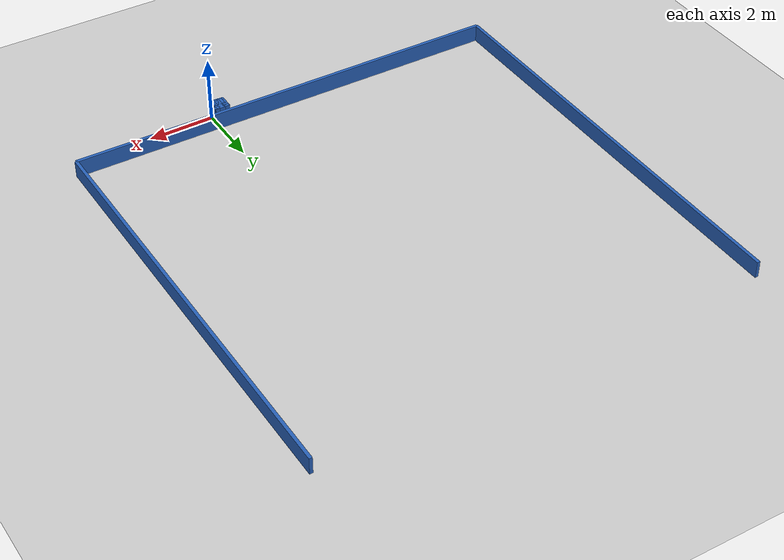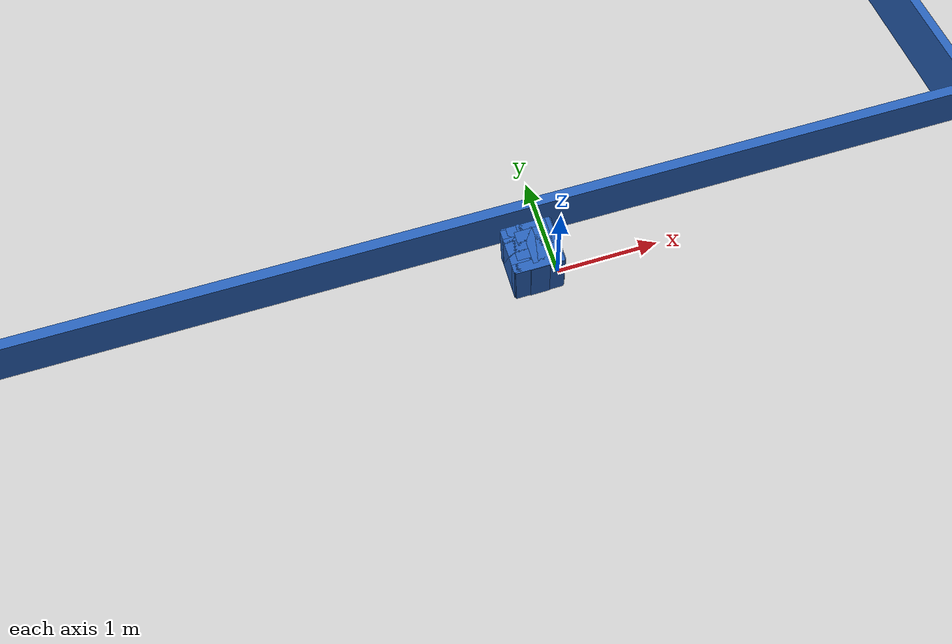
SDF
<?xml version="1.0" ?>
    <sdf version="1.5">
      <world name="default">
        <!-- A global light source -->
        <include>
          <uri>model://sun</uri>
        </include>
        <!-- A ground plane -->
        <include>
          <uri>model://ground_plane</uri>
        </include>

    <model name='libopen_space_final_T2B_123_20'>
      <static>1</static>
      <pose frame=''>-0.225000 0.075000 0.000000 0.000000 0.000000 0.000000</pose>
      <link name='link'>
        <inertial>
          <mass>1</mass>
          <inertia>
            <ixx>0.145833</ixx>
            <ixy>0</ixy>
            <ixz>0</ixz>
            <iyy>0.145833</iyy>
            <iyz>0</iyz>
            <izz>0.125</izz>
          </inertia>
        </inertial>
        <collision name='collision'>
          <geometry>
            <box>
              <size>0.18 0.48 1</size>
            </box>
          </geometry>
          <max_contacts>10</max_contacts>
          <surface>
            <contact>
              <ode/>
            </contact>
            <bounce/>
            <friction>
              <torsional>
                <ode/>
              </torsional>
              <ode/>
            </friction>
          </surface>
        </collision>
        <visual name='visual'>
          <geometry>
            <box>
              <size>0.18 0.48 1</size>
            </box>
          </geometry>
	    <material>
              <ambient>0.152000 0.379000 0.720000 1</ambient>
	      <diffuse>0.152000 0.379000 0.720000 1</diffuse>
          </material>
          <material>
            <script>
              <name>Gazebo/Grey</name>
              <uri>file://media/materials/scripts/gazebo.material</uri>
            </script>
          </material>
        </visual>
        <self_collide>0</self_collide>
        <kinematic>0</kinematic>
        <gravity>1</gravity>
      </link>
      <plugin name='libopen_space_final_T2B_123_20' filename='libopen_space_final_T2B_123_20.so'/>
    </model>

    <model name='libopen_space_final_T2B_109_60'>
      <static>1</static>
      <pose frame=''>-0.225000 0.075000 0.000000 0.000000 0.000000 0.000000</pose>
      <link name='link'>
        <inertial>
          <mass>1</mass>
          <inertia>
            <ixx>0.145833</ixx>
            <ixy>0</ixy>
            <ixz>0</ixz>
            <iyy>0.145833</iyy>
            <iyz>0</iyz>
            <izz>0.125</izz>
          </inertia>
        </inertial>
        <collision name='collision'>
          <geometry>
            <box>
              <size>0.13 0.34 1</size>
            </box>
          </geometry>
          <max_contacts>10</max_contacts>
          <surface>
            <contact>
              <ode/>
            </contact>
            <bounce/>
            <friction>
              <torsional>
                <ode/>
              </torsional>
              <ode/>
            </friction>
          </surface>
        </collision>
        <visual name='visual'>
          <geometry>
            <box>
              <size>0.13 0.34 1</size>
            </box>
          </geometry>
	    <material>
              <ambient>0.152000 0.379000 0.720000 1</ambient>
	      <diffuse>0.152000 0.379000 0.720000 1</diffuse>
          </material>
          <material>
            <script>
              <name>Gazebo/Grey</name>
              <uri>file://media/materials/scripts/gazebo.material</uri>
            </script>
          </material>
        </visual>
        <self_collide>0</self_collide>
        <kinematic>0</kinematic>
        <gravity>1</gravity>
      </link>
      <plugin name='libopen_space_final_T2B_109_60' filename='libopen_space_final_T2B_109_60.so'/>
    </model>

    <model name='libopen_space_final_T2B_52_73'>
      <static>1</static>
      <pose frame=''>-0.225000 0.075000 0.000000 0.000000 0.000000 0.000000</pose>
      <link name='link'>
        <inertial>
          <mass>1</mass>
          <inertia>
            <ixx>0.145833</ixx>
            <ixy>0</ixy>
            <ixz>0</ixz>
            <iyy>0.145833</iyy>
            <iyz>0</iyz>
            <izz>0.125</izz>
          </inertia>
        </inertial>
        <collision name='collision'>
          <geometry>
            <box>
              <size>0.11 0.37 1</size>
            </box>
          </geometry>
          <max_contacts>10</max_contacts>
          <surface>
            <contact>
              <ode/>
            </contact>
            <bounce/>
            <friction>
              <torsional>
                <ode/>
              </torsional>
              <ode/>
            </friction>
          </surface>
        </collision>
        <visual name='visual'>
          <geometry>
            <box>
              <size>0.11 0.37 1</size>
            </box>
          </geometry>
	    <material>
              <ambient>0.152000 0.379000 0.720000 1</ambient>
	      <diffuse>0.152000 0.379000 0.720000 1</diffuse>
          </material>
          <material>
            <script>
              <name>Gazebo/Grey</name>
              <uri>file://media/materials/scripts/gazebo.material</uri>
            </script>
          </material>
        </visual>
        <self_collide>0</self_collide>
        <kinematic>0</kinematic>
        <gravity>1</gravity>
      </link>
      <plugin name='libopen_space_final_T2B_52_73' filename='libopen_space_final_T2B_52_73.so'/>
    </model>

    <model name='libopen_space_final_T2B_106_71'>
      <static>1</static>
      <pose frame=''>-0.225000 0.075000 0.000000 0.000000 0.000000 0.000000</pose>
      <link name='link'>
        <inertial>
          <mass>1</mass>
          <inertia>
            <ixx>0.145833</ixx>
            <ixy>0</ixy>
            <ixz>0</ixz>
            <iyy>0.145833</iyy>
            <iyz>0</iyz>
            <izz>0.125</izz>
          </inertia>
        </inertial>
        <collision name='collision'>
          <geometry>
            <box>
              <size>0.35 0.44 1</size>
            </box>
          </geometry>
          <max_contacts>10</max_contacts>
          <surface>
            <contact>
              <ode/>
            </contact>
            <bounce/>
            <friction>
              <torsional>
                <ode/>
              </torsional>
              <ode/>
            </friction>
          </surface>
        </collision>
        <visual name='visual'>
          <geometry>
            <box>
              <size>0.35 0.44 1</size>
            </box>
          </geometry>
	    <material>
              <ambient>0.152000 0.379000 0.720000 1</ambient>
	      <diffuse>0.152000 0.379000 0.720000 1</diffuse>
          </material>
          <material>
            <script>
              <name>Gazebo/Grey</name>
              <uri>file://media/materials/scripts/gazebo.material</uri>
            </script>
          </material>
        </visual>
        <self_collide>0</self_collide>
        <kinematic>0</kinematic>
        <gravity>1</gravity>
      </link>
      <plugin name='libopen_space_final_T2B_106_71' filename='libopen_space_final_T2B_106_71.so'/>
    </model>

    <model name='libopen_space_final_T2B_55_44'>
      <static>1</static>
      <pose frame=''>-0.225000 0.075000 0.000000 0.000000 0.000000 0.000000</pose>
      <link name='link'>
        <inertial>
          <mass>1</mass>
          <inertia>
            <ixx>0.145833</ixx>
            <ixy>0</ixy>
            <ixz>0</ixz>
            <iyy>0.145833</iyy>
            <iyz>0</iyz>
            <izz>0.125</izz>
          </inertia>
        </inertial>
        <collision name='collision'>
          <geometry>
            <box>
              <size>0.48 0.28 1</size>
            </box>
          </geometry>
          <max_contacts>10</max_contacts>
          <surface>
            <contact>
              <ode/>
            </contact>
            <bounce/>
            <friction>
              <torsional>
                <ode/>
              </torsional>
              <ode/>
            </friction>
          </surface>
        </collision>
        <visual name='visual'>
          <geometry>
            <box>
              <size>0.48 0.28 1</size>
            </box>
          </geometry>
	    <material>
              <ambient>0.152000 0.379000 0.720000 1</ambient>
	      <diffuse>0.152000 0.379000 0.720000 1</diffuse>
          </material>
          <material>
            <script>
              <name>Gazebo/Grey</name>
              <uri>file://media/materials/scripts/gazebo.material</uri>
            </script>
          </material>
        </visual>
        <self_collide>0</self_collide>
        <kinematic>0</kinematic>
        <gravity>1</gravity>
      </link>
      <plugin name='libopen_space_final_T2B_55_44' filename='libopen_space_final_T2B_55_44.so'/>
    </model>

    <model name='libopen_space_final_T2B_73_9'>
      <static>1</static>
      <pose frame=''>-0.225000 0.075000 0.000000 0.000000 0.000000 0.000000</pose>
      <link name='link'>
        <inertial>
          <mass>1</mass>
          <inertia>
            <ixx>0.145833</ixx>
            <ixy>0</ixy>
            <ixz>0</ixz>
            <iyy>0.145833</iyy>
            <iyz>0</iyz>
            <izz>0.125</izz>
          </inertia>
        </inertial>
        <collision name='collision'>
          <geometry>
            <box>
              <size>0.37 0.47 1</size>
            </box>
          </geometry>
          <max_contacts>10</max_contacts>
          <surface>
            <contact>
              <ode/>
            </contact>
            <bounce/>
            <friction>
              <torsional>
                <ode/>
              </torsional>
              <ode/>
            </friction>
          </surface>
        </collision>
        <visual name='visual'>
          <geometry>
            <box>
              <size>0.37 0.47 1</size>
            </box>
          </geometry>
	    <material>
              <ambient>0.152000 0.379000 0.720000 1</ambient>
	      <diffuse>0.152000 0.379000 0.720000 1</diffuse>
          </material>
          <material>
            <script>
              <name>Gazebo/Grey</name>
              <uri>file://media/materials/scripts/gazebo.material</uri>
            </script>
          </material>
        </visual>
        <self_collide>0</self_collide>
        <kinematic>0</kinematic>
        <gravity>1</gravity>
      </link>
      <plugin name='libopen_space_final_T2B_73_9' filename='libopen_space_final_T2B_73_9.so'/>
    </model>

    <model name='libopen_space_final_T2B_90_15'>
      <static>1</static>
      <pose frame=''>-0.225000 0.075000 0.000000 0.000000 0.000000 0.000000</pose>
      <link name='link'>
        <inertial>
          <mass>1</mass>
          <inertia>
            <ixx>0.145833</ixx>
            <ixy>0</ixy>
            <ixz>0</ixz>
            <iyy>0.145833</iyy>
            <iyz>0</iyz>
            <izz>0.125</izz>
          </inertia>
        </inertial>
        <collision name='collision'>
          <geometry>
            <box>
              <size>0.35 0.23 1</size>
            </box>
          </geometry>
          <max_contacts>10</max_contacts>
          <surface>
            <contact>
              <ode/>
            </contact>
            <bounce/>
            <friction>
              <torsional>
                <ode/>
              </torsional>
              <ode/>
            </friction>
          </surface>
        </collision>
        <visual name='visual'>
          <geometry>
            <box>
              <size>0.35 0.23 1</size>
            </box>
          </geometry>
	    <material>
              <ambient>0.152000 0.379000 0.720000 1</ambient>
	      <diffuse>0.152000 0.379000 0.720000 1</diffuse>
          </material>
          <material>
            <script>
              <name>Gazebo/Grey</name>
              <uri>file://media/materials/scripts/gazebo.material</uri>
            </script>
          </material>
        </visual>
        <self_collide>0</self_collide>
        <kinematic>0</kinematic>
        <gravity>1</gravity>
      </link>
      <plugin name='libopen_space_final_T2B_90_15' filename='libopen_space_final_T2B_90_15.so'/>
    </model>

    <model name='libopen_space_final_T2B_77_65'>
      <static>1</static>
      <pose frame=''>-0.225000 0.075000 0.000000 0.000000 0.000000 0.000000</pose>
      <link name='link'>
        <inertial>
          <mass>1</mass>
          <inertia>
            <ixx>0.145833</ixx>
            <ixy>0</ixy>
            <ixz>0</ixz>
            <iyy>0.145833</iyy>
            <iyz>0</iyz>
            <izz>0.125</izz>
          </inertia>
        </inertial>
        <collision name='collision'>
          <geometry>
            <box>
              <size>0.23 0.22 1</size>
            </box>
          </geometry>
          <max_contacts>10</max_contacts>
          <surface>
            <contact>
              <ode/>
            </contact>
            <bounce/>
            <friction>
              <torsional>
                <ode/>
              </torsional>
              <ode/>
            </friction>
          </surface>
        </collision>
        <visual name='visual'>
          <geometry>
            <box>
              <size>0.23 0.22 1</size>
            </box>
          </geometry>
	    <material>
              <ambient>0.152000 0.379000 0.720000 1</ambient>
	      <diffuse>0.152000 0.379000 0.720000 1</diffuse>
          </material>
          <material>
            <script>
              <name>Gazebo/Grey</name>
              <uri>file://media/materials/scripts/gazebo.material</uri>
            </script>
          </material>
        </visual>
        <self_collide>0</self_collide>
        <kinematic>0</kinematic>
        <gravity>1</gravity>
      </link>
      <plugin name='libopen_space_final_T2B_77_65' filename='libopen_space_final_T2B_77_65.so'/>
    </model>

    <model name='libopen_space_final_T2B_87_56'>
      <static>1</static>
      <pose frame=''>-0.225000 0.075000 0.000000 0.000000 0.000000 0.000000</pose>
      <link name='link'>
        <inertial>
          <mass>1</mass>
          <inertia>
            <ixx>0.145833</ixx>
            <ixy>0</ixy>
            <ixz>0</ixz>
            <iyy>0.145833</iyy>
            <iyz>0</iyz>
            <izz>0.125</izz>
          </inertia>
        </inertial>
        <collision name='collision'>
          <geometry>
            <box>
              <size>0.48 0.26 1</size>
            </box>
          </geometry>
          <max_contacts>10</max_contacts>
          <surface>
            <contact>
              <ode/>
            </contact>
            <bounce/>
            <friction>
              <torsional>
                <ode/>
              </torsional>
              <ode/>
            </friction>
          </surface>
        </collision>
        <visual name='visual'>
          <geometry>
            <box>
              <size>0.48 0.26 1</size>
            </box>
          </geometry>
	    <material>
              <ambient>0.152000 0.379000 0.720000 1</ambient>
	      <diffuse>0.152000 0.379000 0.720000 1</diffuse>
          </material>
          <material>
            <script>
              <name>Gazebo/Grey</name>
              <uri>file://media/materials/scripts/gazebo.material</uri>
            </script>
          </material>
        </visual>
        <self_collide>0</self_collide>
        <kinematic>0</kinematic>
        <gravity>1</gravity>
      </link>
      <plugin name='libopen_space_final_T2B_87_56' filename='libopen_space_final_T2B_87_56.so'/>
    </model>

    <model name='libopen_space_final_T2B_140_77'>
      <static>1</static>
      <pose frame=''>-0.225000 0.075000 0.000000 0.000000 0.000000 0.000000</pose>
      <link name='link'>
        <inertial>
          <mass>1</mass>
          <inertia>
            <ixx>0.145833</ixx>
            <ixy>0</ixy>
            <ixz>0</ixz>
            <iyy>0.145833</iyy>
            <iyz>0</iyz>
            <izz>0.125</izz>
          </inertia>
        </inertial>
        <collision name='collision'>
          <geometry>
            <box>
              <size>0.48 0.44 1</size>
            </box>
          </geometry>
          <max_contacts>10</max_contacts>
          <surface>
            <contact>
              <ode/>
            </contact>
            <bounce/>
            <friction>
              <torsional>
                <ode/>
              </torsional>
              <ode/>
            </friction>
          </surface>
        </collision>
        <visual name='visual'>
          <geometry>
            <box>
              <size>0.48 0.44 1</size>
            </box>
          </geometry>
	    <material>
              <ambient>0.152000 0.379000 0.720000 1</ambient>
	      <diffuse>0.152000 0.379000 0.720000 1</diffuse>
          </material>
          <material>
            <script>
              <name>Gazebo/Grey</name>
              <uri>file://media/materials/scripts/gazebo.material</uri>
            </script>
          </material>
        </visual>
        <self_collide>0</self_collide>
        <kinematic>0</kinematic>
        <gravity>1</gravity>
      </link>
      <plugin name='libopen_space_final_T2B_140_77' filename='libopen_space_final_T2B_140_77.so'/>
    </model>

    <model name='libopen_space_final_T2B_112_28'>
      <static>1</static>
      <pose frame=''>-0.225000 0.075000 0.000000 0.000000 0.000000 0.000000</pose>
      <link name='link'>
        <inertial>
          <mass>1</mass>
          <inertia>
            <ixx>0.145833</ixx>
            <ixy>0</ixy>
            <ixz>0</ixz>
            <iyy>0.145833</iyy>
            <iyz>0</iyz>
            <izz>0.125</izz>
          </inertia>
        </inertial>
        <collision name='collision'>
          <geometry>
            <box>
              <size>0.38 0.10 1</size>
            </box>
          </geometry>
          <max_contacts>10</max_contacts>
          <surface>
            <contact>
              <ode/>
            </contact>
            <bounce/>
            <friction>
              <torsional>
                <ode/>
              </torsional>
              <ode/>
            </friction>
          </surface>
        </collision>
        <visual name='visual'>
          <geometry>
            <box>
              <size>0.38 0.10 1</size>
            </box>
          </geometry>
	    <material>
              <ambient>0.152000 0.379000 0.720000 1</ambient>
	      <diffuse>0.152000 0.379000 0.720000 1</diffuse>
          </material>
          <material>
            <script>
              <name>Gazebo/Grey</name>
              <uri>file://media/materials/scripts/gazebo.material</uri>
            </script>
          </material>
        </visual>
        <self_collide>0</self_collide>
        <kinematic>0</kinematic>
        <gravity>1</gravity>
      </link>
      <plugin name='libopen_space_final_T2B_112_28' filename='libopen_space_final_T2B_112_28.so'/>
    </model>

    <model name='libopen_space_final_T2B_111_91'>
      <static>1</static>
      <pose frame=''>-0.225000 0.075000 0.000000 0.000000 0.000000 0.000000</pose>
      <link name='link'>
        <inertial>
          <mass>1</mass>
          <inertia>
            <ixx>0.145833</ixx>
            <ixy>0</ixy>
            <ixz>0</ixz>
            <iyy>0.145833</iyy>
            <iyz>0</iyz>
            <izz>0.125</izz>
          </inertia>
        </inertial>
        <collision name='collision'>
          <geometry>
            <box>
              <size>0.46 0.47 1</size>
            </box>
          </geometry>
          <max_contacts>10</max_contacts>
          <surface>
            <contact>
              <ode/>
            </contact>
            <bounce/>
            <friction>
              <torsional>
                <ode/>
              </torsional>
              <ode/>
            </friction>
          </surface>
        </collision>
        <visual name='visual'>
          <geometry>
            <box>
              <size>0.46 0.47 1</size>
            </box>
          </geometry>
	    <material>
              <ambient>0.152000 0.379000 0.720000 1</ambient>
	      <diffuse>0.152000 0.379000 0.720000 1</diffuse>
          </material>
          <material>
            <script>
              <name>Gazebo/Grey</name>
              <uri>file://media/materials/scripts/gazebo.material</uri>
            </script>
          </material>
        </visual>
        <self_collide>0</self_collide>
        <kinematic>0</kinematic>
        <gravity>1</gravity>
      </link>
      <plugin name='libopen_space_final_T2B_111_91' filename='libopen_space_final_T2B_111_91.so'/>
    </model>

    <model name='libopen_space_final_T2B_120_45'>
      <static>1</static>
      <pose frame=''>-0.225000 0.075000 0.000000 0.000000 0.000000 0.000000</pose>
      <link name='link'>
        <inertial>
          <mass>1</mass>
          <inertia>
            <ixx>0.145833</ixx>
            <ixy>0</ixy>
            <ixz>0</ixz>
            <iyy>0.145833</iyy>
            <iyz>0</iyz>
            <izz>0.125</izz>
          </inertia>
        </inertial>
        <collision name='collision'>
          <geometry>
            <box>
              <size>0.10 0.36 1</size>
            </box>
          </geometry>
          <max_contacts>10</max_contacts>
          <surface>
            <contact>
              <ode/>
            </contact>
            <bounce/>
            <friction>
              <torsional>
                <ode/>
              </torsional>
              <ode/>
            </friction>
          </surface>
        </collision>
        <visual name='visual'>
          <geometry>
            <box>
              <size>0.10 0.36 1</size>
            </box>
          </geometry>
	    <material>
              <ambient>0.152000 0.379000 0.720000 1</ambient>
	      <diffuse>0.152000 0.379000 0.720000 1</diffuse>
          </material>
          <material>
            <script>
              <name>Gazebo/Grey</name>
              <uri>file://media/materials/scripts/gazebo.material</uri>
            </script>
          </material>
        </visual>
        <self_collide>0</self_collide>
        <kinematic>0</kinematic>
        <gravity>1</gravity>
      </link>
      <plugin name='libopen_space_final_T2B_120_45' filename='libopen_space_final_T2B_120_45.so'/>
    </model>

    <model name='libopen_space_final_T2B_85_62'>
      <static>1</static>
      <pose frame=''>-0.225000 0.075000 0.000000 0.000000 0.000000 0.000000</pose>
      <link name='link'>
        <inertial>
          <mass>1</mass>
          <inertia>
            <ixx>0.145833</ixx>
            <ixy>0</ixy>
            <ixz>0</ixz>
            <iyy>0.145833</iyy>
            <iyz>0</iyz>
            <izz>0.125</izz>
          </inertia>
        </inertial>
        <collision name='collision'>
          <geometry>
            <box>
              <size>0.25 0.34 1</size>
            </box>
          </geometry>
          <max_contacts>10</max_contacts>
          <surface>
            <contact>
              <ode/>
            </contact>
            <bounce/>
            <friction>
              <torsional>
                <ode/>
              </torsional>
              <ode/>
            </friction>
          </surface>
        </collision>
        <visual name='visual'>
          <geometry>
            <box>
              <size>0.25 0.34 1</size>
            </box>
          </geometry>
	    <material>
              <ambient>0.152000 0.379000 0.720000 1</ambient>
	      <diffuse>0.152000 0.379000 0.720000 1</diffuse>
          </material>
          <material>
            <script>
              <name>Gazebo/Grey</name>
              <uri>file://media/materials/scripts/gazebo.material</uri>
            </script>
          </material>
        </visual>
        <self_collide>0</self_collide>
        <kinematic>0</kinematic>
        <gravity>1</gravity>
      </link>
      <plugin name='libopen_space_final_T2B_85_62' filename='libopen_space_final_T2B_85_62.so'/>
    </model>

        <model name='bottom_wall'>
          <static>1</static>
          <pose frame=''>-2.25 0.5 0.000000 0.000000 0.000000 1.57079632</pose>
          <link name='link'>
            <inertial>
            <mass>1</mass>
            <inertia>
              <ixx>0.145833</ixx>
              <ixy>0</ixy>
              <ixz>0</ixz>
              <iyy>0.145833</iyy>
              <iyz>0</iyz>
              <izz>0.125</izz>
            </inertia>
            </inertial>
            <collision name='collision'>
            <geometry>
              <box>
              <size>0.1 13.5 1</size>
              </box>
            </geometry>
            <max_contacts>10</max_contacts>
            <surface>
              <contact>
              <ode/>
              </contact>
              <bounce/>
              <friction>
              <torsional>
                <ode/>
              </torsional>
              <ode/>
              </friction>
            </surface>
            </collision>
            <visual name='visual'>
            <geometry>
              <box>
              <size>0.1 13.5 1</size>
              </box>
            </geometry>
            <material>
              <ambient>0.152000 0.379000 0.720000 1</ambient>
            <diffuse>0.152000 0.379000 0.720000 1</diffuse>
            </material>
            <material>
              <script>
              <name>Gazebo/Grey</name>
              <uri>file://media/materials/scripts/gazebo.material</uri>
              </script>
            </material>
            </visual>
            <self_collide>0</self_collide>
            <kinematic>0</kinematic>
            <gravity>1</gravity>
          </link>
        </model>

        <model name='left_wall'>
          <static>1</static>
          <pose frame=''>-9 7.25 0.000000 0.000000 0.000000 0.000000</pose>
          <link name='link'>
            <inertial>
            <mass>1</mass>
            <inertia>
              <ixx>0.145833</ixx>
              <ixy>0</ixy>
              <ixz>0</ixz>
              <iyy>0.145833</iyy>
              <iyz>0</iyz>
              <izz>0.125</izz>
            </inertia>
            </inertial>
            <collision name='collision'>
            <geometry>
              <box>
              <size>0.1 13.5 1</size>
              </box>
            </geometry>
            <max_contacts>10</max_contacts>
            <surface>
              <contact>
              <ode/>
              </contact>
              <bounce/>
              <friction>
              <torsional>
                <ode/>
              </torsional>
              <ode/>
              </friction>
            </surface>
            </collision>
            <visual name='visual'>
            <geometry>
              <box>
              <size>0.1 13.5 1</size>
              </box>
            </geometry>
            <material>
              <ambient>0.152000 0.379000 0.720000 1</ambient>
            <diffuse>0.152000 0.379000 0.720000 1</diffuse>
            </material>
            <material>
              <script>
              <name>Gazebo/Grey</name>
              <uri>file://media/materials/scripts/gazebo.material</uri>
              </script>
            </material>
            </visual>
            <self_collide>0</self_collide>
            <kinematic>0</kinematic>
            <gravity>1</gravity>
          </link>
        </model>

        <model name='right_wall'>
          <static>1</static>
          <pose frame=''>4.5 7.25 0.000000 0.000000 0.000000 0.000000</pose>
          <link name='link'>
            <inertial>
            <mass>1</mass>
            <inertia>
              <ixx>0.145833</ixx>
              <ixy>0</ixy>
              <ixz>0</ixz>
              <iyy>0.145833</iyy>
              <iyz>0</iyz>
              <izz>0.125</izz>
            </inertia>
            </inertial>
            <collision name='collision'>
            <geometry>
              <box>
              <size>0.1 13.5 1</size>
              </box>
            </geometry>
            <max_contacts>10</max_contacts>
            <surface>
              <contact>
              <ode/>
              </contact>
              <bounce/>
              <friction>
              <torsional>
                <ode/>
              </torsional>
              <ode/>
              </friction>
            </surface>
            </collision>
            <visual name='visual'>
            <geometry>
              <box>
              <size>0.1 13.5 1</size>
              </box>
            </geometry>
            <material>
              <ambient>0.152000 0.379000 0.720000 1</ambient>
            <diffuse>0.152000 0.379000 0.720000 1</diffuse>
            </material>
            <material>
              <script>
              <name>Gazebo/Grey</name>
              <uri>file://media/materials/scripts/gazebo.material</uri>
              </script>
            </material>
            </visual>
            <self_collide>0</self_collide>
            <kinematic>0</kinematic>
            <gravity>1</gravity>
          </link>
        </model>

      </world>
    </sdf>"
